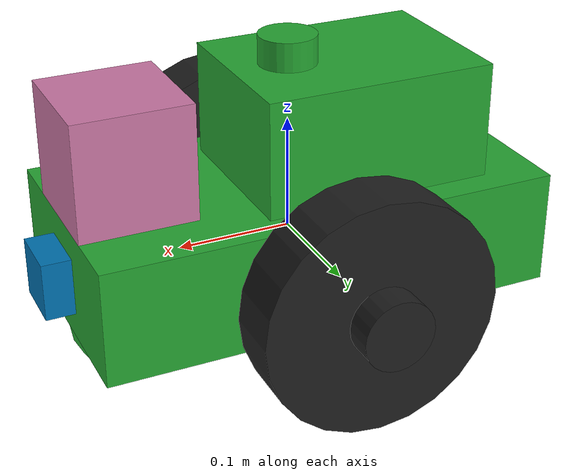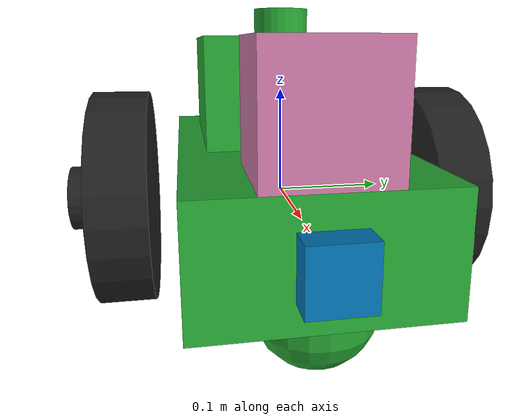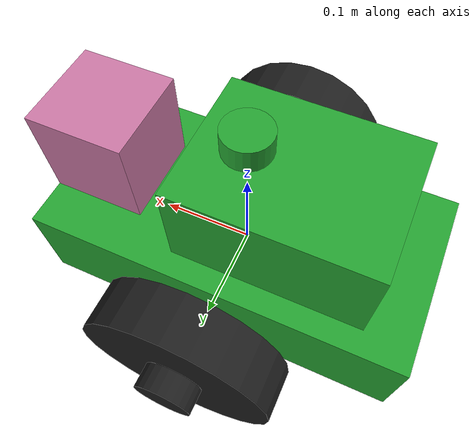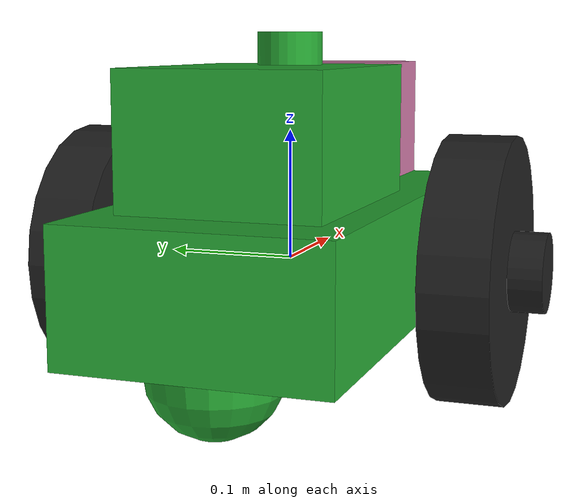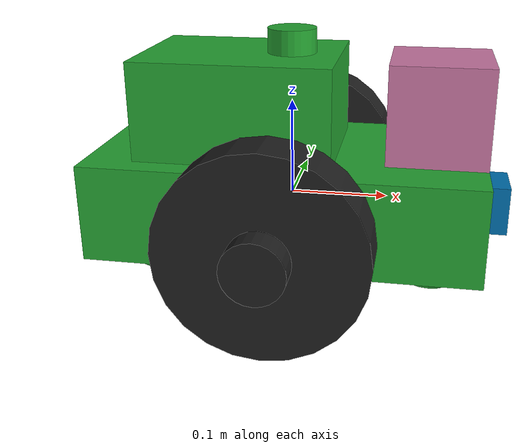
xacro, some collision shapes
<?xml version='1.0'?>

<robot name="my_robot" xmlns:xacro="http://www.ros.org/wiki/xacro">

  <xacro:include filename="$(find my_robot)/urdf/my_robot.gazebo" />

  <link name="robot_footprint"></link>

  <gazebo reference="chassis">
    <material>Gazebo/Green</material>
  </gazebo>
  <gazebo reference="right_wheel">
    <material>Gazebo/Black</material>
  </gazebo>
  <gazebo reference="left_wheel">
    <material>Gazebo/Black</material>
  </gazebo>

  <joint name="robot_footprint_joint" type="fixed">
    <origin xyz="0 0 0" rpy="0 0 0" />
    <parent link="robot_footprint"/>
    <child link="chassis" />
  </joint>

  <link name='chassis'>
    <pose>0 0 0.1 0 0 0</pose>

    <inertial>
      <mass value="15.0"/>
      <origin xyz="0.0 0 0" rpy=" 0 0 0"/>
      <inertia
          ixx="0.1" ixy="0" ixz="0"
          iyy="0.1" iyz="0"
          izz="0.1"
      />
    </inertial>

    <collision name='collision'>
      <origin xyz="0 0 0" rpy=" 0 0 0"/>
      <geometry>
        <box size=".4 .2 .1"/>
      </geometry>
    </collision>

    <visual name='chassis_visual'>
      <origin xyz="0 0 0" rpy=" 0 0 0"/>
      <geometry>
        <box size=".4 .2 .1"/>
      </geometry>
    </visual>

    <collision name='back_caster_collision'>
      <origin xyz="-0.15 0 -0.05" rpy=" 0 0 0"/>
      <geometry>
        <sphere radius="0.0499"/>
      </geometry>
    </collision>

    <visual name='back_caster_visual'>
      <origin xyz="-0.15 0 -0.05" rpy=" 0 0 0"/>
      <geometry>
        <sphere radius="0.05"/>
      </geometry>
    </visual>

    <collision name='front_caster_collision'>
      <origin xyz="0.15 0 -0.05" rpy=" 0 0 0"/>
      <geometry>
        <sphere radius="0.0499"/>
      </geometry>
    </collision>

    <visual name='front_caster_visual'>
      <origin xyz="0.15 0 -0.05" rpy=" 0 0 0"/>
      <geometry>
        <sphere radius="0.05"/>
      </geometry>
    </visual>

    <visual name='passenger_case_visual'>
      <origin xyz="-0.05 0 0.1" rpy=" 0 0 0"/>
      <geometry>
        <box size=".2 .15 .1"/>
      </geometry>
    </visual>

    <visual name='top_decoration'>
      <origin xyz="0 0 0.15" rpy=" 0 0 0"/>
      <geometry>
        <cylinder radius="0.025" length='0.05'/>
      </geometry>
    </visual>

  </link>

  <link name="right_wheel">
    <collision name="right_wheel_collision">
      <origin xyz='0 0 0' rpy='0 1.5707 1.5707'/>
      <geometry>
        <cylinder radius='0.1' length='0.05'/>
      </geometry>
    </collision>

    <inertial name="right_wheel_intertial">
      <mass value="5.0"/>
      <origin xyz="0.0 0 0" rpy=" 0 1.5707 1.5707"/>
      <inertia
          ixx="0.1" ixy="0" ixz="0"
          iyy="0.1" iyz="0"
          izz="0.1"
      />
    </inertial>

    <visual name="right_wheel_visual">
      <origin xyz='0 0 0' rpy='0 1.5707 1.5707'/>
      <geometry>
        <cylinder radius='0.1' length='0.05'/>
      </geometry>
    </visual>

    <visual name="right_rin_visual">
      <origin xyz='0 -0.025 0' rpy='0 1.5707 1.5707'/>
      <geometry>
        <cylinder radius='0.03' length='0.05'/>
      </geometry>
    </visual>
  </link>

  <link name="left_wheel">
    <collision name="left_wheel_collision">
      <origin xyz='0 0 0' rpy='0 1.5707 1.5707'/>
      <geometry>
        <cylinder radius='0.1' length='0.05'/>
      </geometry>
    </collision>

    <inertial name="left_wheel_intertial">
      <mass value="5.0"/>
      <origin xyz="0.0 0 0" rpy=" 0 1.5707 1.5707"/>
      <inertia
          ixx="0.1" ixy="0" ixz="0"
          iyy="0.1" iyz="0"
          izz="0.1"
      />
    </inertial>

    <visual name="left_wheel_visual">
      <origin xyz='0 0 0' rpy='0 1.5707 1.5707'/>
      <geometry>
        <cylinder radius='0.1' length='0.05'/>
      </geometry>
    </visual>

    <visual name="left_rin_visual">
      <origin xyz='0 0.025 0' rpy='0 1.5707 1.5707'/>
      <geometry>
        <cylinder radius='0.03' length='0.05'/>
      </geometry>
    </visual>
  </link>

  <joint type="continuous" name="left_wheel_hinge">
   <origin xyz="0 0.15 0" rpy="0 0 0"/>
   <child link="left_wheel"/>
   <parent link="chassis"/>
   <axis xyz="0 1 0" rpy="0 0 0"/>
   <limit effort="10000" velocity="1000"/>
   <dynamics damping="1.0" friction="1.0"/>
 </joint>

 <joint type="continuous" name="right_wheel_hinge">
   <origin xyz="0 -0.15 0" rpy="0 0 0"/>
   <child link="right_wheel"/>
   <parent link="chassis"/>
   <axis xyz="0 1 0" rpy="0 0 0"/>
   <limit effort="10000" velocity="1000"/>
   <dynamics damping="1.0" friction="1.0"/>
 </joint>

 <link name='camera'>
   <collision name="camera_collision">
     <origin xyz='0 0 0' rpy='0 0 0'/>
     <geometry>
       <box size=".05 .05 .05"/>
     </geometry>
   </collision>

   <inertial name="camera_intertial">
     <mass value="0.1"/>
     <origin xyz="0.05 0.05 0.05"/>
     <inertia
         ixx="1e-6" ixy="0" ixz="0"
         iyy="1e-6" iyz="0"
         izz="1e-6"
     />
   </inertial>

   <visual name="camera_visual">
     <origin xyz='0 0 0' rpy='0 0 0'/>
     <geometry>
       <box size='0.05 0.05 0.05'/>
     </geometry>
   </visual>
 </link>

 <joint type='fixed' name='camera_joint'>
   <origin xyz='0.2 0 0' rpy='0 0 0'/>
   <child link='camera'/>
   <parent link='chassis'/>
   <axis xyz='0 1 0'/>
 </joint>

 <link name="camera_link_optical">
 </link>

 <joint name="camera_optical_joint" type="fixed">
   <origin xyz="0 0 0" rpy="-1.5707 0 -1.5707"/>
   <parent link="camera"/>
   <child link="camera_link_optical"/>
 </joint>

 <link name='hokuyo'>
   <collision name="hokuyo_collision">
     <origin xyz='0 0 0' rpy='0 0 0'/>
     <geometry>
       <box size=".1 .1 .1"/>
     </geometry>
   </collision>

   <inertial name="hokuyo_intertial">
     <mass value="1e-5"/>
     <inertia
          ixx="1e-6" ixy="0" ixz="0"
          iyy="1e-6" iyz="0"
          izz="1e-6"
     />
   </inertial>

   <visual name="hokuyo_visual">
     <origin xyz='0 0 0' rpy='0 0 0'/>
     <geometry>
       <mesh filename='package://my_robot/meshes/hokuyo.dae'/>
     </geometry>
   </visual>
 </link>

 <joint type='fixed' name='hokuyo_joint'>
   <origin xyz='0.15 0 0.1' rpy='0 0 0'/>
   <child link='hokuyo'/>
   <parent link='chassis'/>
   <axis xyz='0 1 0'/>
 </joint>
</robot>
